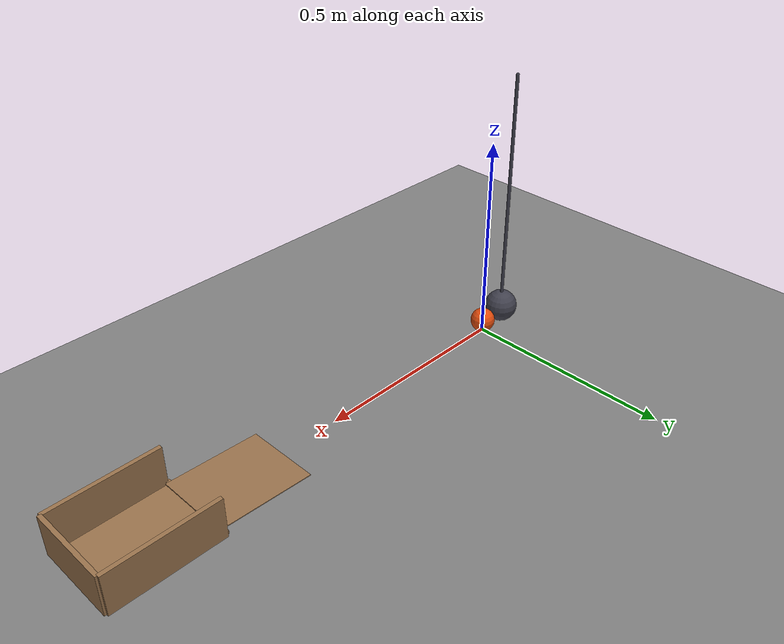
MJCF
<mujoco model="pendulum_rolls_a_ball_into_a_cup">
  <compiler angle="radian"/>
  <option timestep="0.002"/>
  <worldbody>
    <geom name="floor" type="plane" size="6 6 0.1" friction="0.6 0.001 0.0002"/>
    <body name="ball" pos="0 0 0.03">
      <freejoint/>
      <geom name="ball" type="sphere" pos="0 0 0" size="0.03" mass="0.06" condim="6" friction="0.6 0.001 0.0002" solref="0.01 1" rgba="0.9 0.3 0.05 1"/>
    </body>
    <body name="pendulum" pos="-0.07 0 0.642">
      <joint name="pendulum_hinge" type="hinge" pos="0 0 0" axis="0 1 0" damping="0.005"/>
      <geom name="pendulum" type="sphere" pos="0 0 -0.6" size="0.04" mass="0.25" friction="0.2 0.001 0.0002" solref="0.01 1" rgba="0.25 0.25 0.3 1"/>
      <geom name="pendulum rod" type="capsule" size="0.004" fromto="0 0 0 0 0 -0.56" mass="0.03" rgba="0.25 0.25 0.3 1"/>
    </body>
    <body name="cup">
      <geom name="cup_base" type="box" pos="1 0 0.001" size="0.13 0.1 0.001" friction="0.9 0.005 0.006" solref="0.01 1" rgba="0.6 0.45 0.3 1"/>
      <geom name="cup_near_wall" type="box" pos="0.87 0 0.005" size="0.005 0.1 0.005" friction="0.9 0.005 0.006" solref="0.01 1" rgba="0.6 0.45 0.3 1"/>
      <geom name="cup_far_wall" type="box" pos="1.13 0 0.05" size="0.005 0.1 0.05" friction="0.9 0.005 0.006" solref="0.01 1" rgba="0.6 0.45 0.3 1"/>
      <geom name="cup_left_wall" type="box" pos="1 0.1 0.05" size="0.13 0.005 0.05" friction="0.9 0.005 0.006" solref="0.01 1" rgba="0.6 0.45 0.3 1"/>
      <geom name="cup_right_wall" type="box" pos="1 -0.1 0.05" size="0.13 0.005 0.05" friction="0.9 0.005 0.006" solref="0.01 1" rgba="0.6 0.45 0.3 1"/>
    </body>
    <body name="cup approach">
      <geom name="cup approach" type="box" pos="0.765 0 0.006" size="0.115109 0.09 0.001" euler="0 -0.0434509 0" friction="0.6 0.001 0.0002" solref="0.01 1" rgba="0.6 0.45 0.3 1"/>
    </body>
  </worldbody>
  <keyframe>
    <key name="start" qpos="0 0 0.03 1 0 0 0 0.523599" qvel="0 0 0 0 0 0 0"/>
  </keyframe>
</mujoco>
